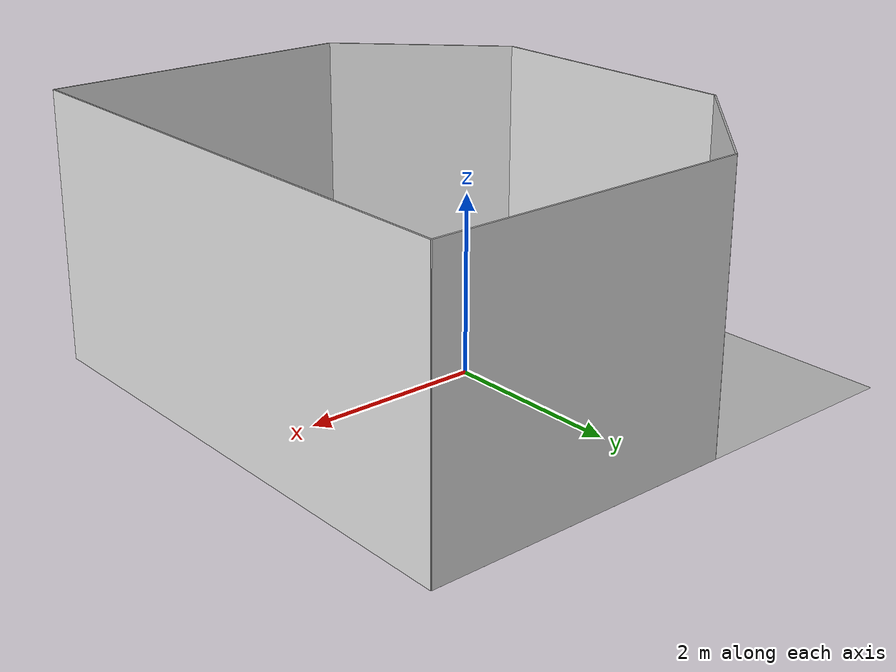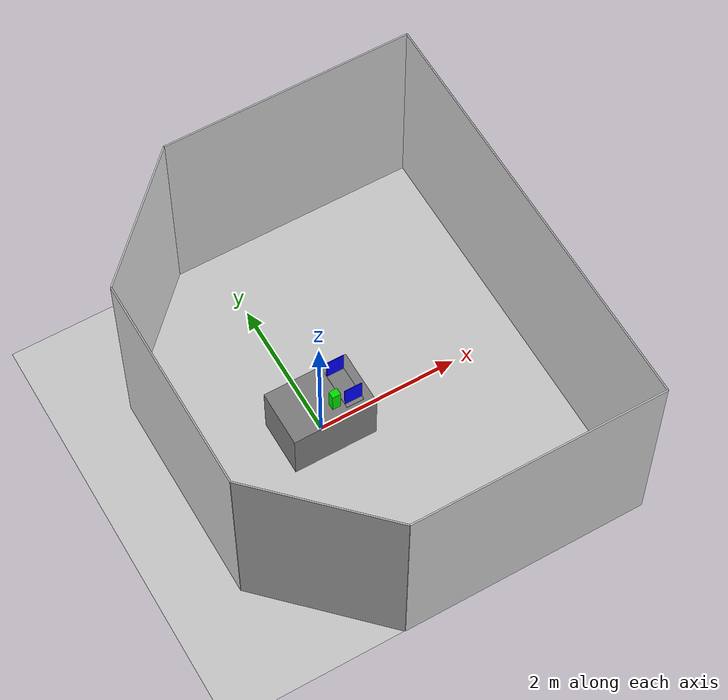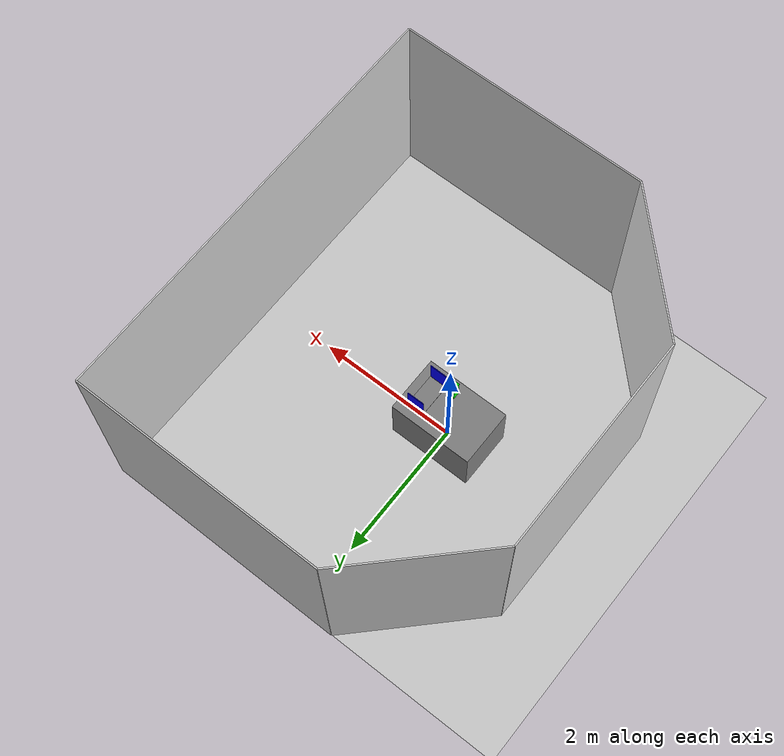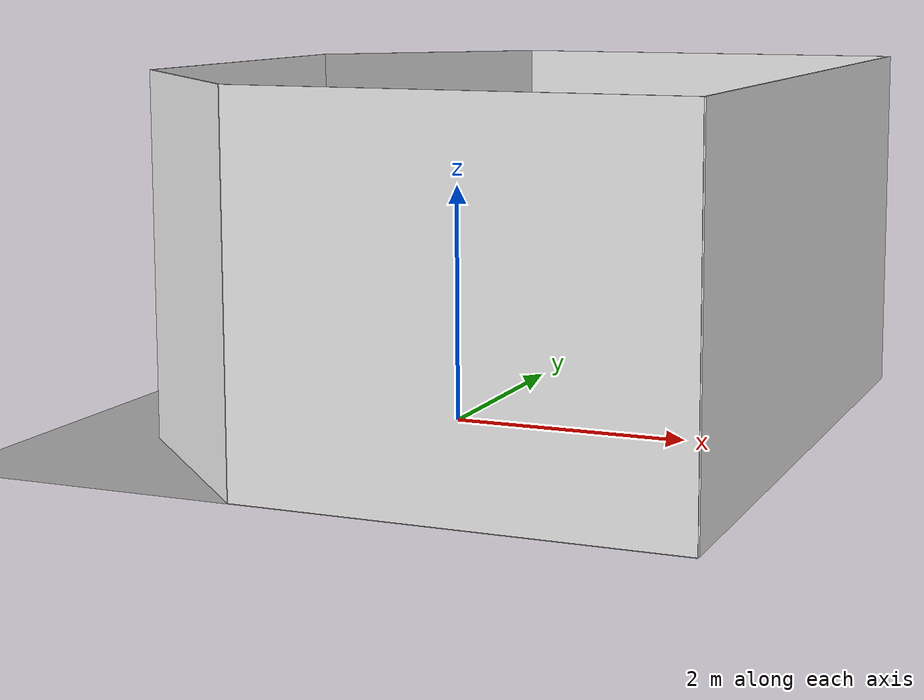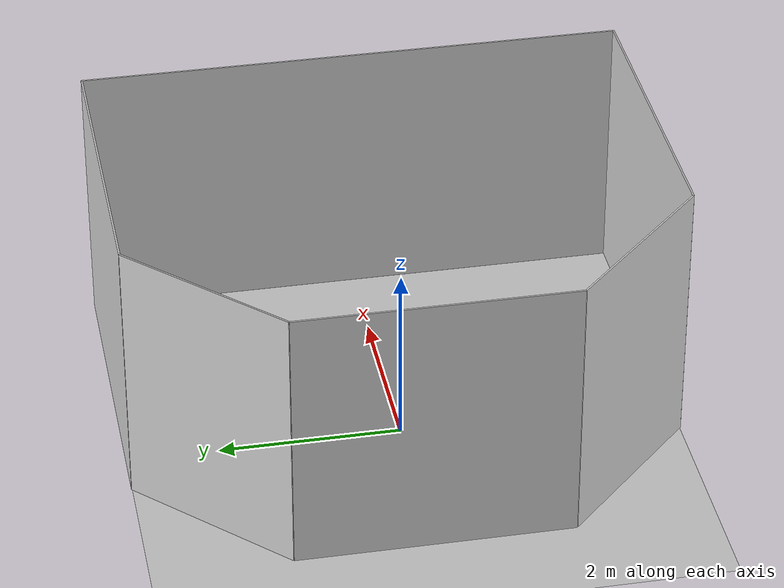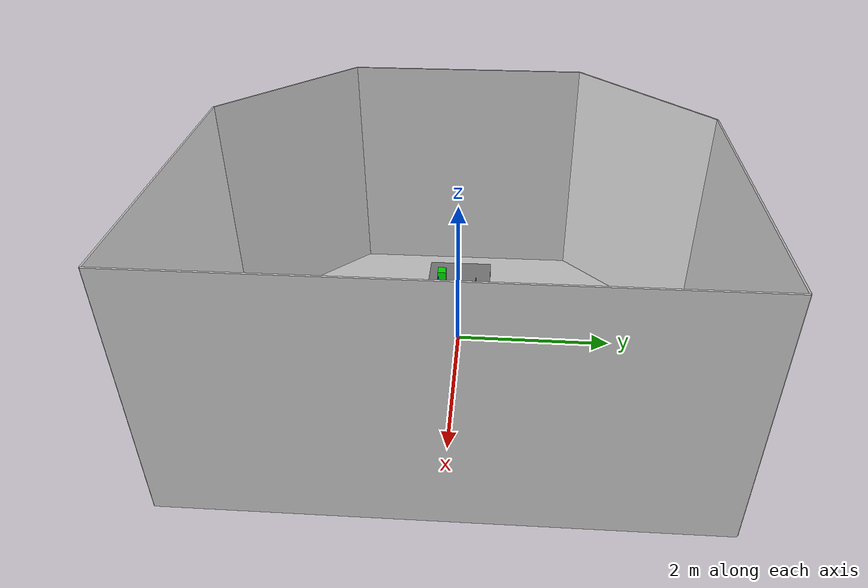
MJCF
<mujoco model="stowing_arena">
  <asset>
    <texture builtin="gradient" height="256" rgb1=".9 .9 1." rgb2=".2 .3 .4" type="skybox" width="256"/>
    <texture file="../textures/light-gray-floor-tile.png" type="2d" name="texplane"/>
    <material name="floorplane" reflectance="0.01" shininess="0.0" specular="0.0" texrepeat="2 2" texture="texplane" texuniform="true"/>
    <!-- ceramic table texture and material-->
    <texture file="../textures/ceramic.png" type="cube" name="tex-ceramic"/>
    <material name="table_ceramic" reflectance="0.0" shininess="0.0" specular="0.2" texrepeat="1 1" texture="tex-ceramic" />
    <!-- steel legs -->
    <texture file="../textures/steel-brushed.png" type="cube" name="tex-steel-brushed"/>
    <material name="table_legs_metal" reflectance="0.8" shininess="0.8" texrepeat="1 1" texture="tex-steel-brushed" />
    <!-- plaster walls -->
    <texture file="../textures/light-gray-plaster.png" type="2d" name="tex-light-gray-plaster"/>
    <material name="walls_mat" reflectance="0.0" shininess="0.1" specular="0.1" texrepeat="3 3" texture="tex-light-gray-plaster" texuniform="true" />
    <!-- bins -->
    <texture file="../textures/light-wood.png" type="2d" name="tex-light-wood"/>
    <texture file="../textures/dark-wood.png" type="2d" name="tex-dark-wood"/>
    <material name="light-wood" reflectance="0" texrepeat="15 15" texture="tex-light-wood" texuniform="true"/>
    <material name="dark-wood" reflectance="0" texrepeat="5 5" texture="tex-dark-wood" texuniform="true"/>
  </asset>
  <worldbody>
    <geom condim="3" group="1" material="floorplane" name="floor" pos="0 0 0" size="3 3 .125" type="plane"/>
    <!-- Table body -->
    <body name="table" pos="0 0 0.4">
      <geom pos="0 0 0" size="0.6 0.4 0.4" type="box" group="0" name="table_collision" friction="0.3 0.005 0.0001"/>
      <geom pos="0 0 0" size="0.6 0.4 0.4" type="box" conaffinity="0" contype="0" group="1" name="table_visual" material="table_ceramic"/>
      <site pos="0 0 0.4" name="table_top" size="0.001 0.001 0.001" rgba="0 0 0 0"/>
      <!-- Legs (visual only) -->
      <geom pos="0 0 0" size="0.05 0.1" type="cylinder" conaffinity="0" contype="0" group="1" name="table_leg1_visual" material="table_legs_metal"/>
      <geom pos="0 0 0" size="0.05 0.1" type="cylinder" conaffinity="0" contype="0" group="1" name="table_leg2_visual" material="table_legs_metal"/>
      <geom pos="0 0 0" size="0.05 0.1" type="cylinder" conaffinity="0" contype="0" group="1" name="table_leg3_visual" material="table_legs_metal"/>
      <geom pos="0 0 0" size="0.05 0.1" type="cylinder" conaffinity="0" contype="0" group="1" name="table_leg4_visual" material="table_legs_metal"/>
    </body>

    <!-- Walls (visual only) -->
    <geom pos="-1.25 2.25 1.5" quat="0.6532815 0.6532815 0.2705981 0.2705981" size="1.06 1.5 0.01" type="box" conaffinity="0" contype="0" group="1" name="wall_leftcorner_visual" material="walls_mat"/>
    <geom pos="-1.25 -2.25 1.5" quat="0.6532815 0.6532815 -0.2705981 -0.2705981" size="1.06 1.5 0.01" type="box" conaffinity="0" contype="0" group="1" name="wall_rightcorner_visual" material="walls_mat"/>
    <geom pos="1.25 3 1.5" quat="0.7071 0.7071 0 0" size="1.75 1.5 0.01" type="box" conaffinity="0" contype="0" group="1" name="wall_left_visual" material="walls_mat"/>
    <geom pos="1.25 -3 1.5" quat="0.7071 -0.7071 0 0" size="1.75 1.5 0.01" type="box" conaffinity="0" contype="0" group="1" name="wall_right_visual" material="walls_mat"/>
    <geom pos="-2 0 1.5" quat="0.5 0.5 0.5 0.5" size="1.5 1.5 0.01" type="box" conaffinity="0" contype="0" group="1" name="wall_rear_visual" material="walls_mat"/>
    <geom pos="3 0 1.5" quat="0.5 0.5 -0.5 -0.5" size="3 1.5 0.01" type="box" conaffinity="0" contype="0" group="1" name="wall_front_visual" material="walls_mat"/>
    <!-- bins -->
    <body name="shelf" pos="0.35 0 0.8" >
        <geom pos="0 0 0" size="0.125 0.29 0.005" type="box" group="0" friction="1 0.005 0.0001" name="shelf_bottom_collision"/>
        <geom pos="0 0 0" size="0.125 0.29 0.005" type="box" conaffinity="0" contype="0" group="1" name="shelf_bottom_visual" material="light-wood" />
        <geom pos="0 0.233 0.167" size="0.125 0.005 0.167" type="box" group="0" friction="1 0.005 0.0001" rgba="0 0 1 1"/>
        <geom pos="0 0.233 0.167" size="0.125 0.005 0.167" type="box" conaffinity="0" contype="0" group="1" material="light-wood"/>
        <geom pos="0 -0.233 0.167" size="0.125 0.005 0.167" type="box" group="0" friction="1 0.005 0.0001" rgba="0 0 1 1"/>
        <geom pos="0 -0.233 0.167" size="0.125 0.005 0.167" type="box" conaffinity="0" contype="0" group="1" material="light-wood"/>
        <!-- Legs (visual only) -->
    </body>
    <body name="box" pos="0.1 -0.2 1">
    <!-- 6 dof -->
      <joint type="free"/>
      <geom type="box" size="0.06 0.05 0.15" friction="1" euler= "0 0 0" rgba="0 .9 0 1"/>
    </body>

    <light pos="1.0 1.0 1.5" dir="-0.2 -0.2 -1" specular="0.3 0.3 0.3" directional="true" castshadow="false"/>
    <!-- front view -->
    <camera mode="fixed" name="frontview" pos="1.6 0 1.45" quat="0.56 0.43 0.43 0.56"/>
    <!-- bird view -->
    <camera mode="fixed" name="birdview" pos="-0.2 0 3.0" quat="0.7071 0 0 0.7071"/>
    <!-- agent view -->
    <camera mode="fixed" name="agentview" pos="1.0 0 1.75" quat="0.653 0.271 0.271 0.653"/>
    <!-- side view -->
    <camera mode="fixed" name="sideview" pos="-0.05651774593317116 1.2761224129427358 1.4879572214102434" quat="0.009905065491771751 0.006877963156909582 0.5912228352893879 0.806418094001364" />
  </worldbody>
</mujoco>
